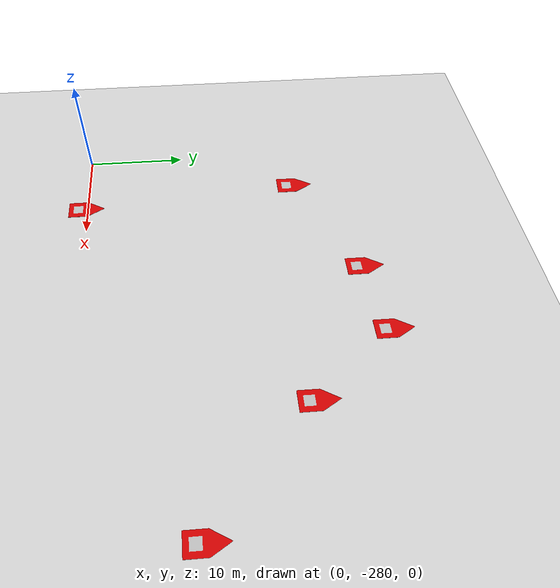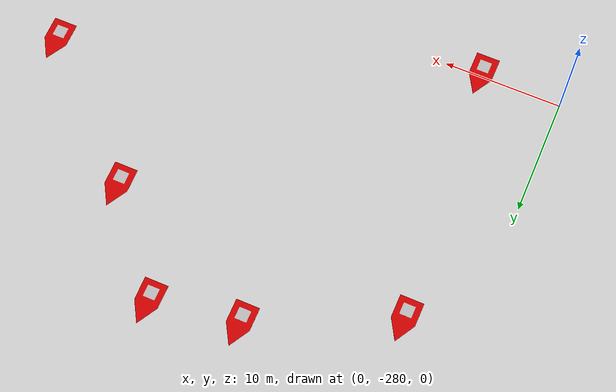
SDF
<sdf version="1.7">
 <world name="default">
  <model name="ground_plane">
   <static>1</static>
   <link name="link">
    <collision name="collision">
     <geometry><plane><normal>0 0 1</normal><size>5000 5000</size></plane></geometry>
     <surface><friction><ode><mu>1</mu><mu2>1</mu2></ode></friction></surface>
    </collision>
    <visual name="runway">
     <pose>0 0 0.005 0 0 -1.5707</pose>
     <cast_shadows>0</cast_shadows>
     <geometry><plane><normal>0 0 1</normal><size>1829 45</size></plane></geometry>
     <material>
      <script><uri>file://media/materials/scripts/gazebo.material</uri><name>Gazebo/Runway</name></script>
     </material>
    </visual>
    <visual name="grass">
     <pose>0 0 -0.1 0 -0 0</pose>
     <cast_shadows>0</cast_shadows>
     <geometry><plane><normal>0 0 1</normal><size>5000 5000</size></plane></geometry>
     <material>
      <script><uri>file://media/materials/scripts/gazebo.material</uri><name>Gazebo/Grass</name></script>
     </material>
    </visual>
   </link>
  </model>
  <model name="biao_12_0_clone_16_clone">
   <link name="link_0">
    <inertial>
     <mass>1</mass>
     <inertia>
      <ixx>0.166667</ixx>
      <ixy>0</ixy>
      <ixz>0</ixz>
      <iyy>0.166667</iyy>
      <iyz>0</iyz>
      <izz>0.166667</izz>
     </inertia>
    </inertial>
    <visual name="visual">
     <geometry>
      <mesh><uri>/home/lzc/lzc-code/src/simulation/models/biao/12/12.dae</uri><scale>1 1 1</scale></mesh>
     </geometry>
    </visual>
    <collision name="collision">
     <geometry>
      <mesh><uri>/home/lzc/lzc-code/src/simulation/models/biao/12/12.dae</uri><scale>1 1 1</scale></mesh>
     </geometry>
     <surface>
      <friction>
       <ode><mu>1</mu><mu2>1</mu2><fdir1>0 0 0</fdir1><slip1>0</slip1><slip2>0</slip2></ode>
       <torsional>
        <coefficient>1</coefficient>
        <patch_radius>0</patch_radius>
        <surface_radius>0</surface_radius>
        <use_patch_radius>1</use_patch_radius>
        <ode><slip>0</slip></ode>
       </torsional>
      </friction>
      <bounce><restitution_coefficient>0</restitution_coefficient><threshold>1e+06</threshold></bounce>
      <contact>
       <collide_without_contact>0</collide_without_contact>
       <collide_without_contact_bitmask>1</collide_without_contact_bitmask>
       <collide_bitmask>1</collide_bitmask>
       <ode>
        <soft_cfm>0</soft_cfm>
        <soft_erp>0.2</soft_erp>
        <kp>1e+13</kp>
        <kd>1</kd>
        <max_vel>0.01</max_vel>
        <min_depth>0</min_depth>
       </ode>
       <bullet>
        <split_impulse>1</split_impulse>
        <split_impulse_penetration_threshold>-0.01</split_impulse_penetration_threshold>
        <soft_cfm>0</soft_cfm>
        <soft_erp>0.2</soft_erp>
        <kp>1e+13</kp>
        <kd>1</kd>
       </bullet>
      </contact>
     </surface>
    </collision>
   </link>
   <static>0</static>
   <pose>16.6584 -253.164 0.010964 0 0 -1e-06</pose>
  </model>
  <model name="biao_12_0_clone_16_clone_0">
   <link name="link_0">
    <inertial>
     <mass>1</mass>
     <inertia>
      <ixx>0.166667</ixx>
      <ixy>0</ixy>
      <ixz>0</ixz>
      <iyy>0.166667</iyy>
      <iyz>0</iyz>
      <izz>0.166667</izz>
     </inertia>
    </inertial>
    <visual name="visual">
     <geometry>
      <mesh><uri>/home/lzc/lzc-code/src/simulation/models/biao/12/12.dae</uri><scale>1 1 1</scale></mesh>
     </geometry>
    </visual>
    <collision name="collision">
     <geometry>
      <mesh><uri>/home/lzc/lzc-code/src/simulation/models/biao/12/12.dae</uri><scale>1 1 1</scale></mesh>
     </geometry>
     <surface>
      <friction>
       <ode><mu>1</mu><mu2>1</mu2><fdir1>0 0 0</fdir1><slip1>0</slip1><slip2>0</slip2></ode>
       <torsional>
        <coefficient>1</coefficient>
        <patch_radius>0</patch_radius>
        <surface_radius>0</surface_radius>
        <use_patch_radius>1</use_patch_radius>
        <ode><slip>0</slip></ode>
       </torsional>
      </friction>
      <bounce><restitution_coefficient>0</restitution_coefficient><threshold>1e+06</threshold></bounce>
      <contact>
       <collide_without_contact>0</collide_without_contact>
       <collide_without_contact_bitmask>1</collide_without_contact_bitmask>
       <collide_bitmask>1</collide_bitmask>
       <ode>
        <soft_cfm>0</soft_cfm>
        <soft_erp>0.2</soft_erp>
        <kp>1e+13</kp>
        <kd>1</kd>
        <max_vel>0.01</max_vel>
        <min_depth>0</min_depth>
       </ode>
       <bullet>
        <split_impulse>1</split_impulse>
        <split_impulse_penetration_threshold>-0.01</split_impulse_penetration_threshold>
        <soft_cfm>0</soft_cfm>
        <soft_erp>0.2</soft_erp>
        <kp>1e+13</kp>
        <kd>1</kd>
       </bullet>
      </contact>
     </surface>
    </collision>
   </link>
   <static>0</static>
   <pose>41 -270 0.010973 -2.7e-05 -2.7e-05 -1e-06</pose>
  </model>
  <model name="biao_12_0_clone_16_clone_6">
   <link name="link_0">
    <inertial>
     <mass>1</mass>
     <inertia>
      <ixx>0.166667</ixx>
      <ixy>0</ixy>
      <ixz>0</ixz>
      <iyy>0.166667</iyy>
      <iyz>0</iyz>
      <izz>0.166667</izz>
     </inertia>
    </inertial>
    <visual name="visual">
     <geometry>
      <mesh><uri>/home/lzc/lzc-code/src/simulation/models/biao/12/12.dae</uri><scale>1 1 1</scale></mesh>
     </geometry>
    </visual>
    <collision name="collision">
     <geometry>
      <mesh><uri>/home/lzc/lzc-code/src/simulation/models/biao/12/12.dae</uri><scale>1 1 1</scale></mesh>
     </geometry>
     <surface>
      <friction>
       <ode><mu>1</mu><mu2>1</mu2><fdir1>0 0 0</fdir1><slip1>0</slip1><slip2>0</slip2></ode>
       <torsional>
        <coefficient>1</coefficient>
        <patch_radius>0</patch_radius>
        <surface_radius>0</surface_radius>
        <use_patch_radius>1</use_patch_radius>
        <ode><slip>0</slip></ode>
       </torsional>
      </friction>
      <bounce><restitution_coefficient>0</restitution_coefficient><threshold>1e+06</threshold></bounce>
      <contact>
       <collide_without_contact>0</collide_without_contact>
       <collide_without_contact_bitmask>1</collide_without_contact_bitmask>
       <collide_bitmask>1</collide_bitmask>
       <ode>
        <soft_cfm>0</soft_cfm>
        <soft_erp>0.2</soft_erp>
        <kp>1e+13</kp>
        <kd>1</kd>
        <max_vel>0.01</max_vel>
        <min_depth>0</min_depth>
       </ode>
       <bullet>
        <split_impulse>1</split_impulse>
        <split_impulse_penetration_threshold>-0.01</split_impulse_penetration_threshold>
        <soft_cfm>0</soft_cfm>
        <soft_erp>0.2</soft_erp>
        <kp>1e+13</kp>
        <kd>1</kd>
       </bullet>
      </contact>
     </surface>
    </collision>
   </link>
   <static>0</static>
   <pose>30.5004 -260 0.011 0 0 -1e-06</pose>
  </model>
  <model name="biao_12_0_clone_16_clone_8">
   <link name="link_0">
    <inertial>
     <mass>1</mass>
     <inertia>
      <ixx>0.166667</ixx>
      <ixy>0</ixy>
      <ixz>0</ixz>
      <iyy>0.166667</iyy>
      <iyz>0</iyz>
      <izz>0.166667</izz>
     </inertia>
    </inertial>
    <visual name="visual">
     <geometry>
      <mesh><uri>/home/lzc/lzc-code/src/simulation/models/biao/12/12.dae</uri><scale>1 1 1</scale></mesh>
     </geometry>
    </visual>
    <collision name="collision">
     <geometry>
      <mesh><uri>/home/lzc/lzc-code/src/simulation/models/biao/12/12.dae</uri><scale>1 1 1</scale></mesh>
     </geometry>
     <surface>
      <friction>
       <ode><mu>1</mu><mu2>1</mu2><fdir1>0 0 0</fdir1><slip1>0</slip1><slip2>0</slip2></ode>
       <torsional>
        <coefficient>1</coefficient>
        <patch_radius>0</patch_radius>
        <surface_radius>0</surface_radius>
        <use_patch_radius>1</use_patch_radius>
        <ode><slip>0</slip></ode>
       </torsional>
      </friction>
      <bounce><restitution_coefficient>0</restitution_coefficient><threshold>1e+06</threshold></bounce>
      <contact>
       <collide_without_contact>0</collide_without_contact>
       <collide_without_contact_bitmask>1</collide_without_contact_bitmask>
       <collide_bitmask>1</collide_bitmask>
       <ode>
        <soft_cfm>0</soft_cfm>
        <soft_erp>0.2</soft_erp>
        <kp>1e+13</kp>
        <kd>1</kd>
        <max_vel>0.01</max_vel>
        <min_depth>0</min_depth>
       </ode>
       <bullet>
        <split_impulse>1</split_impulse>
        <split_impulse_penetration_threshold>-0.01</split_impulse_penetration_threshold>
        <soft_cfm>0</soft_cfm>
        <soft_erp>0.2</soft_erp>
        <kp>1e+13</kp>
        <kd>1</kd>
       </bullet>
      </contact>
     </surface>
    </collision>
   </link>
   <static>0</static>
   <pose>24 -252 0.011 0 0 -1e-06</pose>
  </model>
  <model name="biao_12_0_clone_16_clone_0_clone_18">
   <link name="link_0">
    <inertial>
     <mass>1</mass>
     <inertia>
      <ixx>0.166667</ixx>
      <ixy>0</ixy>
      <ixz>0</ixz>
      <iyy>0.166667</iyy>
      <iyz>0</iyz>
      <izz>0.166667</izz>
     </inertia>
    </inertial>
    <visual name="visual">
     <geometry>
      <mesh><uri>/home/lzc/lzc-code/src/simulation/models/biao/12/12.dae</uri><scale>1 1 1</scale></mesh>
     </geometry>
    </visual>
    <collision name="collision">
     <geometry>
      <mesh><uri>/home/lzc/lzc-code/src/simulation/models/biao/12/12.dae</uri><scale>1 1 1</scale></mesh>
     </geometry>
     <surface>
      <friction>
       <ode><mu>1</mu><mu2>1</mu2><fdir1>0 0 0</fdir1><slip1>0</slip1><slip2>0</slip2></ode>
       <torsional>
        <coefficient>1</coefficient>
        <patch_radius>0</patch_radius>
        <surface_radius>0</surface_radius>
        <use_patch_radius>1</use_patch_radius>
        <ode><slip>0</slip></ode>
       </torsional>
      </friction>
      <bounce><restitution_coefficient>0</restitution_coefficient><threshold>1e+06</threshold></bounce>
      <contact>
       <collide_without_contact>0</collide_without_contact>
       <collide_without_contact_bitmask>1</collide_without_contact_bitmask>
       <collide_bitmask>1</collide_bitmask>
       <ode>
        <soft_cfm>0</soft_cfm>
        <soft_erp>0.2</soft_erp>
        <kp>1e+13</kp>
        <kd>1</kd>
        <max_vel>0.01</max_vel>
        <min_depth>0</min_depth>
       </ode>
       <bullet>
        <split_impulse>1</split_impulse>
        <split_impulse_penetration_threshold>-0.01</split_impulse_penetration_threshold>
        <soft_cfm>0</soft_cfm>
        <soft_erp>0.2</soft_erp>
        <kp>1e+13</kp>
        <kd>1</kd>
       </bullet>
      </contact>
     </surface>
    </collision>
   </link>
   <static>0</static>
   <pose>7 -281 0.011 0 0 -1e-06</pose>
  </model>
  <model name="biao_12_0_clone_16_clone_0_clone_19">
   <link name="link_0">
    <inertial>
     <mass>1</mass>
     <inertia>
      <ixx>0.166667</ixx>
      <ixy>0</ixy>
      <ixz>0</ixz>
      <iyy>0.166667</iyy>
      <iyz>0</iyz>
      <izz>0.166667</izz>
     </inertia>
    </inertial>
    <visual name="visual">
     <geometry>
      <mesh><uri>/home/lzc/lzc-code/src/simulation/models/biao/12/12.dae</uri><scale>1 1 1</scale></mesh>
     </geometry>
    </visual>
    <collision name="collision">
     <geometry>
      <mesh><uri>/home/lzc/lzc-code/src/simulation/models/biao/12/12.dae</uri><scale>1 1 1</scale></mesh>
     </geometry>
     <surface>
      <friction>
       <ode><mu>1</mu><mu2>1</mu2><fdir1>0 0 0</fdir1><slip1>0</slip1><slip2>0</slip2></ode>
       <torsional>
        <coefficient>1</coefficient>
        <patch_radius>0</patch_radius>
        <surface_radius>0</surface_radius>
        <use_patch_radius>1</use_patch_radius>
        <ode><slip>0</slip></ode>
       </torsional>
      </friction>
      <bounce><restitution_coefficient>0</restitution_coefficient><threshold>1e+06</threshold></bounce>
      <contact>
       <collide_without_contact>0</collide_without_contact>
       <collide_without_contact_bitmask>1</collide_without_contact_bitmask>
       <collide_bitmask>1</collide_bitmask>
       <ode>
        <soft_cfm>0</soft_cfm>
        <soft_erp>0.2</soft_erp>
        <kp>1e+13</kp>
        <kd>1</kd>
        <max_vel>0.01</max_vel>
        <min_depth>0</min_depth>
       </ode>
       <bullet>
        <split_impulse>1</split_impulse>
        <split_impulse_penetration_threshold>-0.01</split_impulse_penetration_threshold>
        <soft_cfm>0</soft_cfm>
        <soft_erp>0.2</soft_erp>
        <kp>1e+13</kp>
        <kd>1</kd>
       </bullet>
      </contact>
     </surface>
    </collision>
   </link>
   <static>0</static>
   <pose>5 -258.57 0.010973 -2.7e-05 -2.7e-05 -1e-06</pose>
  </model>
 </world>
</sdf>
